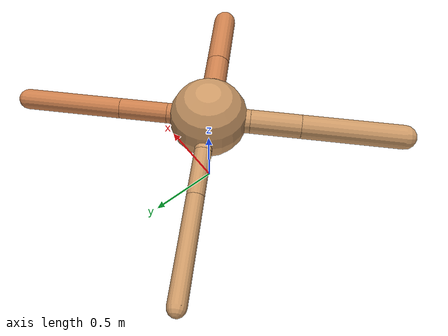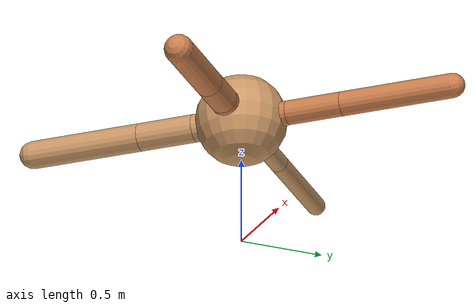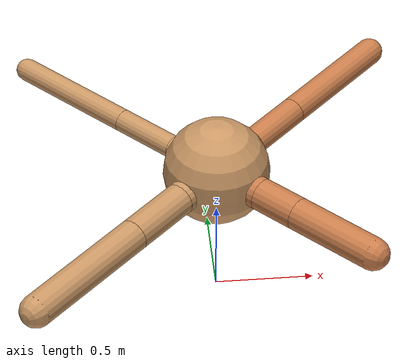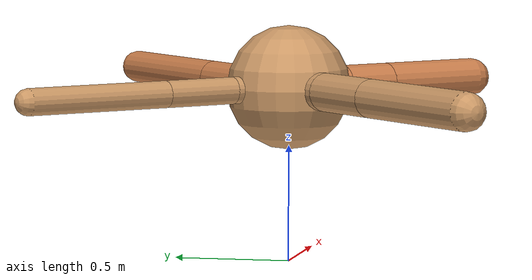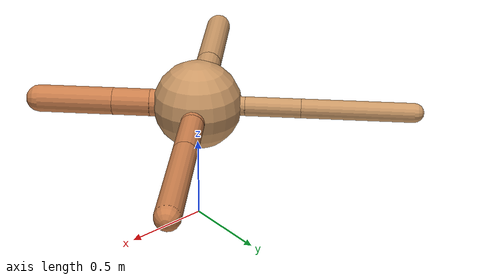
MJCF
<?xml version="1.0" ?>
<mujoco model="ant">

	<compiler angle="degree" coordinate="local" inertiafromgeom="true"/>

	<option integrator="RK4" timestep="0.01"/>

	<custom>

		<numeric data="0.0 0.0 0.55 1.0 0.0 0.0 0.0 0.0 1.0 0.0 -1.0 0.0 -1.0 0.0 1.0" name="init_qpos"/>

	</custom>

	<default>

		<joint armature="1" damping="1" limited="true"/>

		<geom conaffinity="0" condim="3" density="5.0" friction="1.5 0.1 0.1" margin="0.01" rgba="0.8 0.6 0.4 1"/>

	</default>

	<worldbody>

		<body name="torso" pos="0 0 0.75">

			<geom name="torso_geom" pos="0 0 0" size="0.26604973133701326" type="sphere"/>

			<!--joint armature="0" damping="0" limited="false" margin="0.01" name="root" pos="0 0 0" type="free"/-->

			<body name="front_left_leg" pos="0 0 0">

				<geom fromto="0 0 0 0.2 0.2 0" name="aux_1_geom" size="0.06967558372317245" type="capsule" rgba=".8 .5 .3 1"/>

				<body name="aux_1" pos="0.2 0.2 0">

					<joint axis="0 0 1" name="hip_1" pos="0.0 0.0 0.0" range="-40 40" type="hinge"/>

					<geom fromto="0 0 0 0.23031975238240898 0.23031975238240898 0" name="left_leg_geom" size="0.06967558372317245" type="capsule" rgba=".8 .5 .3 1"/>

					<body pos="0.23031975238240898 0.23031975238240898 0" name="front_left_foot">

						<joint axis="-1 1 0" name="ankle_1" pos="0.0 0.0 0.0" range="30 100" type="hinge"/>

						<geom fromto="0 0 0 0.46063950476481796 0.46063950476481796 0" name="left_ankle_geom" size="0.06967558372317245" type="capsule" rgba=".8 .5 .3 1"/>

					</body>

				</body>

			</body>

			<body name="front_right_leg" pos="0 0 0">

				<geom fromto="0 0 0 -0.2 0.2 0" name="aux_2_geom" size="0.05730324647864954" type="capsule"/>

				<body name="aux_2" pos="-0.2 0.2 0">

					<joint axis="0 0 1" name="hip_2" pos="0.0 0.0 0.0" range="-40 40" type="hinge"/>

					<geom fromto="0 0 0 -0.23354527618715287 0.23354527618715287 0" name="right_leg_geom" size="0.05730324647864954" type="capsule"/>

					<body pos="-0.23354527618715287 0.23354527618715287 0" name="front_right_foot">

						<joint axis="1 1 0" name="ankle_2" pos="0.0 0.0 0.0" range="-100 -30" type="hinge"/>

						<geom fromto="0 0 0 -0.46709055237430575 0.46709055237430575 0" name="right_ankle_geom" size="0.05730324647864954" type="capsule"/>

					</body>

				</body>

			</body>

			<body name="left_back_leg" pos="0 0 0">

				<geom fromto="0 0 0 -0.2 -0.2 0" name="aux_3_geom" size="0.08138588068279598" type="capsule"/>

				<body name="aux_3" pos="-0.2 -0.2 0">

					<joint axis="0 0 1" name="hip_3" pos="0.0 0.0 0.0" range="-40 40" type="hinge"/>

					<geom fromto="0 0 0 -0.23970766208902763 -0.23970766208902763 0" name="back_leg_geom" size="0.08138588068279598" type="capsule"/>

					<body pos="-0.23970766208902763 -0.23970766208902763 0" name="left_back_foot">

						<joint axis="-1 1 0" name="ankle_3" pos="0.0 0.0 0.0" range="-100 -30" type="hinge"/>

						<geom fromto="0 0 0 -0.47941532417805527 -0.47941532417805527 0" name="third_ankle_geom" size="0.08138588068279598" type="capsule"/>

					</body>

				</body>

			</body>

			<body name="right_back_leg" pos="0 0 0">

				<geom fromto="0 0 0 0.2 -0.2 0" name="aux_4_geom" size="0.08128581376147619" type="capsule" rgba=".8 .5 .3 1"/>

				<body name="aux_4" pos="0.2 -0.2 0">

					<joint axis="0 0 1" name="hip_4" pos="0.0 0.0 0.0" range="-40 40" type="hinge"/>

					<geom fromto="0 0 0 0.15910334851630148 -0.15910334851630148 0" name="rightback_leg_geom" size="0.08128581376147619" type="capsule" rgba=".8 .5 .3 1"/>

					<body pos="0.15910334851630148 -0.15910334851630148 0" name="right_back_foot">

						<joint axis="1 1 0" name="ankle_4" pos="0.0 0.0 0.0" range="30 100" type="hinge"/>

						<geom fromto="0 0 0 0.31820669703260296 -0.31820669703260296 0" name="fourth_ankle_geom" size="0.08128581376147619" type="capsule" rgba=".8 .5 .3 1"/>

					</body>

				</body>

			</body>

		</body>

	</worldbody>

	<actuator>

		<motor ctrllimited="true" ctrlrange="-1.0 1.0" joint="hip_4" gear="150"/>

		<motor ctrllimited="true" ctrlrange="-1.0 1.0" joint="ankle_4" gear="150"/>

		<motor ctrllimited="true" ctrlrange="-1.0 1.0" joint="hip_1" gear="150"/>

		<motor ctrllimited="true" ctrlrange="-1.0 1.0" joint="ankle_1" gear="150"/>

		<motor ctrllimited="true" ctrlrange="-1.0 1.0" joint="hip_2" gear="150"/>

		<motor ctrllimited="true" ctrlrange="-1.0 1.0" joint="ankle_2" gear="150"/>

		<motor ctrllimited="true" ctrlrange="-1.0 1.0" joint="hip_3" gear="150"/>

		<motor ctrllimited="true" ctrlrange="-1.0 1.0" joint="ankle_3" gear="150"/>

	</actuator>

</mujoco>
